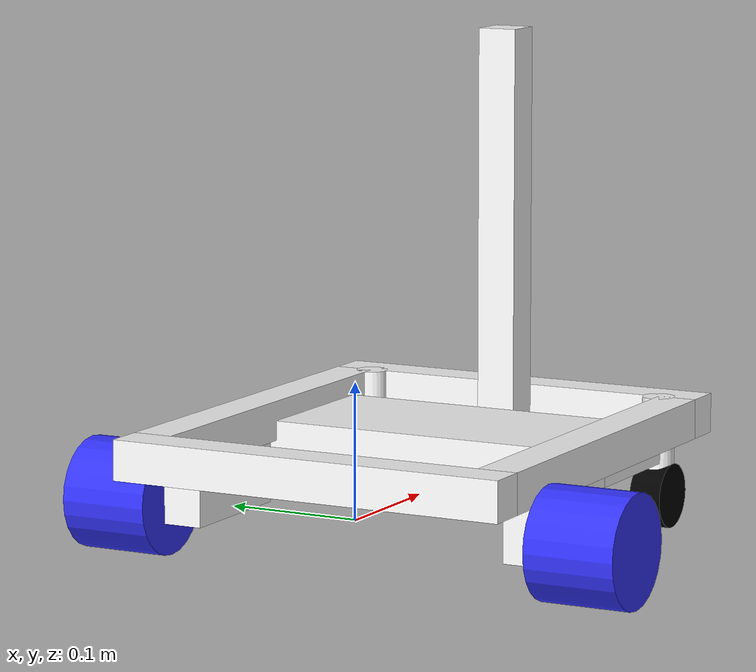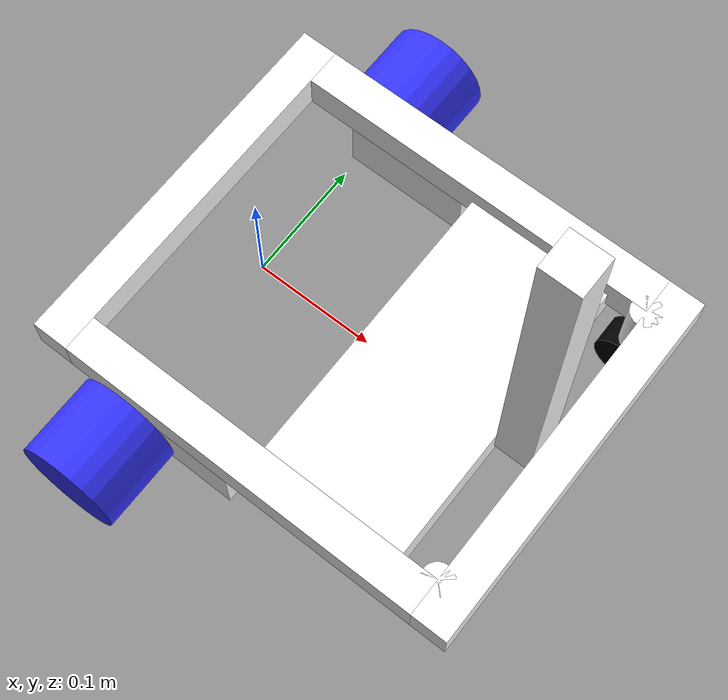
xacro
<?xml version="1.0"?>
<robot xmlns:xacro="http://www.ros.org/wiki/xacro"  name="robot">

    <!-- Includes -->
   <xacro:include filename="inertial_macros.xacro" />

    <!-- definition variables -->

    <xacro:property name = "length_chassis" value = "0.365"/>
    <xacro:property name = "width_chassis" value = "0.305"/>
    <xacro:property name = "size_item" value = "0.030"/>
    <xacro:property name = "hight_main_robot" value = "0.1"/>
    <xacro:property name = "diameter_rear_wheel" value = "0.083"/>
    <xacro:property name = "width_rear_wheel" value = "0.0675"/>
    <xacro:property name = "back_to_rear_axel" value = "0.08"/>
    <xacro:property name = "diameter_front_wheel" value = "0.049"/>
    <xacro:property name = "hight_sensor_tower" value = "0.305"/>

    <!-- definition colors -->
    <material name = "white">
        <color rgba = "1 1 1 1" />
    </material>

    <material name = "green">
        <color rgba = "0 1 0 1" />
    </material>

    <material name="orange">
        <color rgba = "1 0.3 0.1 1" />
    </material>

    <material name = "blue">
        <color rgba = "0.2 0.2 1 1" />
    </material>

    <material name = "black">
        <color rgba = "0 0 0 1" />
    </material>

    <!-- Base Link -->

    <link name = "base_link">

    </link>

    <!-- Chassis Link -->

    <joint name = "chassis_joint" type = "fixed">
        <parent link = "base_link"/>
        <child link = "chassis_link"/>
        <origin xyz = "${-back_to_rear_axel} 0 ${hight_main_robot-0.5*diameter_rear_wheel-size_item}"/>
    </joint>

    <link name = "chassis_link">
        <!-- ITEM Hinten -->
        <visual>
            <origin xyz = "${size_item/2} 0 ${size_item/2}"/>
            <geometry>
                <box size = "${size_item} ${width_chassis} ${size_item}"/>
            </geometry>
            <material name = "white"/>
        </visual>
       <xacro:inertial_box mass="0.25" x="${size_item}" y="${width_chassis}" z="${size_item}">
            <origin xyz="${size_item/2} 0 ${size_item/2}"  rpy="0 0 0"/>
        </xacro:inertial_box>

        <!-- ITEM Vorne -->
        <visual>
            <origin xyz = "${length_chassis-size_item/2} 0 ${size_item/2}"/>
            <geometry>
                <box size = "${size_item} ${width_chassis} ${size_item}"/>
            </geometry>
            <material name = "white"/>
        </visual>
        <xacro:inertial_box mass="0.25" x="${size_item}" y="${width_chassis}" z="${size_item}">
            <origin xyz="${length_chassis-size_item/2} 0 ${size_item/2}"  rpy="0 0 0"/>
        </xacro:inertial_box>

        <!-- ITEM Links -->
        <visual>
            <origin xyz = "${length_chassis/2} ${width_chassis/2-size_item/2} ${size_item/2}"/>
            <geometry>
                <box size = "${length_chassis-2*size_item} ${size_item} ${size_item}"/>
            </geometry>
            <material name = "white"/>
        </visual>
        <xacro:inertial_box mass="0.25" x="${length_chassis-2*size_item}" y="${size_item}" z="${size_item}">
            <origin xyz="${length_chassis/2} ${width_chassis/2-size_item/2} ${size_item/2}"  rpy="0 0 0"/>
        </xacro:inertial_box>

        <!-- ITEM Rechts -->
        <visual>
            <origin xyz = "${length_chassis/2} ${-width_chassis/2+size_item/2} ${size_item/2}"/>
            <geometry>
                <box size = "${length_chassis-2*size_item} ${size_item} ${size_item}"/>
            </geometry>
            <material name = "white"/>
        </visual>
        <xacro:inertial_box mass="0.25" x="${length_chassis-2*size_item}" y="${size_item}" z="${size_item}">
            <origin xyz="${length_chassis/2} ${-width_chassis/2+size_item/2} ${size_item/2}"  rpy="0 0 0"/>
        </xacro:inertial_box>

        <!-- Motor und Radhalterung Links -->
        <visual>
            <origin xyz = "${back_to_rear_axel+0.5*diameter_rear_wheel} ${width_chassis/2-size_item/2} ${-0.75*size_item}"/>
            <geometry>
                <box size = "${1.25*diameter_rear_wheel} ${size_item} ${1.5*size_item}"/>
            </geometry>
            <material name = "white"/>
        </visual>
        <xacro:inertial_box mass="0.3" x="${1.25*diameter_rear_wheel}" y="${size_item}" z="${1.5*size_item}">
            <origin xyz="${back_to_rear_axel+0.5*diameter_rear_wheel} ${width_chassis/2-size_item/2} ${-0.75*size_item}"  rpy="0 0 0"/>
        </xacro:inertial_box>

        <!-- Motor und Radhalterung Rechts -->
        <visual>
            <origin xyz = "${back_to_rear_axel+0.5*diameter_rear_wheel} ${-width_chassis/2+size_item/2} ${-0.75*size_item}"/>
            <geometry>
                <box size = "${1.25*diameter_rear_wheel} ${size_item} ${1.5*size_item}"/>
            </geometry>
            <material name = "white"/>
        </visual>
        <xacro:inertial_box mass="0.3" x="${1.25*diameter_rear_wheel}" y="${size_item}" z="${1.5*size_item}">
            <origin xyz="${back_to_rear_axel+0.5*diameter_rear_wheel} ${-width_chassis/2+size_item/2} ${-0.75*size_item}"  rpy="0 0 0"/>
        </xacro:inertial_box>

        <!-- Stuetzradhalterung Links -->
        <visual>
            <origin xyz = "${length_chassis-size_item} ${width_chassis/2-size_item} ${-hight_main_robot/2+diameter_front_wheel/4+size_item}"/>
            <geometry>
                <cylinder radius = "${diameter_front_wheel/4}" length = "${hight_main_robot-diameter_front_wheel/2}"/>
            </geometry>
            <material name = "white"/>
        </visual>
        <xacro:inertial_cylinder mass="0.1" length = "${hight_main_robot-diameter_front_wheel/2}" radius = "${diameter_front_wheel/4}">
            <origin xyz="${length_chassis-size_item} ${width_chassis/2-size_item} ${-hight_main_robot/2+diameter_front_wheel/4+size_item}"  rpy="0 0 0"/>
        </xacro:inertial_cylinder>

        <!-- Stuetzradhalterung Rechts -->
        <visual>
            <origin xyz = "${length_chassis-size_item} ${-width_chassis/2+size_item} ${-hight_main_robot/2+diameter_front_wheel/4+size_item}"/>
            <geometry>
                <cylinder radius = "${diameter_front_wheel/4}" length = "${hight_main_robot-diameter_front_wheel/2}"/>
            </geometry>
            <material name = "white"/>
        </visual>
        <xacro:inertial_cylinder mass="0.1" length = "${hight_main_robot-diameter_front_wheel/2}" radius = "${diameter_front_wheel/4}">
            <origin xyz="${length_chassis-size_item} ${-width_chassis/2+size_item} ${-hight_main_robot/2+diameter_front_wheel/4+size_item}"  rpy="0 0 0"/>
        </xacro:inertial_cylinder>

        <!-- Komponententraeger -->
        <visual>
            <origin xyz = "${length_chassis*2/3} 0 0"/>
            <geometry>
                <box size = "${length_chassis/3} ${width_chassis-1*size_item} ${size_item}"/>
            </geometry>
            <material name = "white"/>
        </visual>
        <xacro:inertial_box mass="0.5" x="${length_chassis/3}" y="${width_chassis-1*size_item}" z="${size_item}">
            <origin xyz="${length_chassis*2/3} 0 0"  rpy="0 0 0"/>
        </xacro:inertial_box>

        <collision>
            <origin xyz = "${length_chassis/2} 0 ${-hight_main_robot/2+size_item+diameter_front_wheel/4}"/>
            <geometry>
                <box size = "${length_chassis} ${width_chassis} ${hight_main_robot-diameter_front_wheel/2}"/>
            </geometry>
        </collision>
    </link>

    <gazebo reference = "chassis_link">
        <material>Gazebo/White</material>
    </gazebo>

    <!-- LEFT WHEEL -->

    <joint name="left_wheel_joint" type="continuous">
        <parent link="base_link"/>
        <child link="left_wheel"/>
        <origin xyz="0 ${width_chassis/2+width_rear_wheel/2} 0" rpy="-${pi/2} 0 0"/>
        <axis xyz="0 0 1"/>
    </joint>

    <link name="left_wheel">
        <visual>
            <geometry>
                <cylinder length="${width_rear_wheel}" radius="${diameter_rear_wheel/2}" />
            </geometry>
            <material name="blue"/>
        </visual>
        <xacro:inertial_cylinder mass="0.15" length="${width_rear_wheel}" radius="${diameter_rear_wheel/2}">
            <origin xyz="0 0 0" rpy="0 0 0"/>
        </xacro:inertial_cylinder>
        <collision>
            <geometry>
                <cylinder length="${width_rear_wheel}" radius="${diameter_rear_wheel/2}" />
            </geometry>
        </collision>
    </link>

    <gazebo reference = "left_wheel">
        <material>Gazebo/Blue</material>
    </gazebo>

    <!-- RIGHT WHEEL -->

    <joint name="right_wheel_joint" type="continuous">
        <parent link="base_link"/>
        <child link="right_wheel"/>
        <origin xyz="0 ${-width_chassis/2-width_rear_wheel/2} 0" rpy="${pi/2} 0 0"/>
        <axis xyz="0 0 -1"/>
    </joint>

    <link name="right_wheel">
        <visual>
            <geometry>
                <cylinder length="${width_rear_wheel}" radius="${diameter_rear_wheel/2}" />
            </geometry>
            <material name="blue"/>
        </visual>
        <xacro:inertial_cylinder mass="0.15" length="${width_rear_wheel}" radius="${diameter_rear_wheel/2}">
            <origin xyz="0 0 0" rpy="0 0 0"/>
        </xacro:inertial_cylinder>
        <collision>
            <geometry>
                <cylinder length="${width_rear_wheel}" radius="${diameter_rear_wheel/2}" />
            </geometry>
        </collision>
    </link>

    <gazebo reference = "right_wheel">
        <material>Gazebo/Blue</material>
    </gazebo>

    <!-- CASTER WHEEL -->

    <joint name="caster_wheel_joint" type="fixed">
        <parent link="chassis_link"/>
        <child link="caster_wheel"/>
        <origin xyz = "${length_chassis-size_item} 0 ${-hight_main_robot+diameter_front_wheel/2+size_item}"/>
    </joint>

    <link name="caster_wheel">
        <visual>
            <origin xyz = "0 ${-width_chassis/2+size_item} 0" rpy="${pi/2} 0 0"/>
            <geometry>
                <cylinder radius="${diameter_front_wheel/2}" length = "${diameter_front_wheel/2}"/>
            </geometry>
            <material name="black"/>
        </visual>
        <xacro:inertial_cylinder mass="0.1" length="${diameter_front_wheel/2}" radius="${diameter_front_wheel/2}">
            <origin xyz = "0 ${-width_chassis/2+size_item} 0" rpy="${pi/2} 0 0"/>
        </xacro:inertial_cylinder>
        <visual>
            <origin xyz = "0 ${width_chassis/2-size_item} 0" rpy="${pi/2} 0 0"/>
            <geometry>
                <cylinder radius="${diameter_front_wheel/2}" length = "${diameter_front_wheel/2}"/>
            </geometry>
            <material name="black"/>
        </visual>
        <xacro:inertial_cylinder mass="0.15" length="${diameter_front_wheel/2}" radius="${diameter_front_wheel/2}">
            <origin xyz = "0 ${width_chassis/2-size_item} 0" rpy="${pi/2} 0 0"/>
        </xacro:inertial_cylinder>
        <collision>
            <origin xyz = "0 ${-width_chassis/2+size_item} 0" rpy="${pi/2} 0 0"/>
            <geometry>
                <cylinder radius="${diameter_front_wheel/2}" length = "${diameter_front_wheel/2}"/>
            </geometry>
        </collision>
        <collision>
            <origin xyz = "0 ${width_chassis/2-size_item} 0" rpy="${pi/2} 0 0"/>
            <geometry>
                <cylinder radius="${diameter_front_wheel/2}" length = "${diameter_front_wheel/2}"/>
            </geometry>
        </collision>
    </link>

    <gazebo reference = "caster_wheel">
        <material>Gazebo/Black</material>
        <mu1 value="0.0001"/>
        <mu2 value="0.0001"/>
    </gazebo>

    <!-- Sensor Tower Link -->

    <joint name = "sensor_tower_joint" type = "fixed">
        <parent link = "chassis_link"/>
        <child link = "sensor_tower_link"/>
        <origin xyz = "${length_chassis-1.5*size_item} 0 ${hight_sensor_tower/2}"/>
    </joint>

    <link name = "sensor_tower_link">
        <visual>
            <geometry>
                <box size = "${size_item} ${size_item} ${hight_sensor_tower}"/>
            </geometry>
            <material name = "white"/>
        </visual>
       <xacro:inertial_box mass="0.25" x="${size_item}" y="${size_item}" z="${hight_sensor_tower}">
            <origin xyz= "0 0 0"  rpy="0 0 0"/>
        </xacro:inertial_box>

        <collision>
            <geometry>
                <box size = "${size_item} ${size_item} ${hight_sensor_tower}"/>
            </geometry>
        </collision>
    </link>

    <gazebo reference = "sensor_tower_link">
        <material>Gazebo/White</material>
    </gazebo>
</robot>
